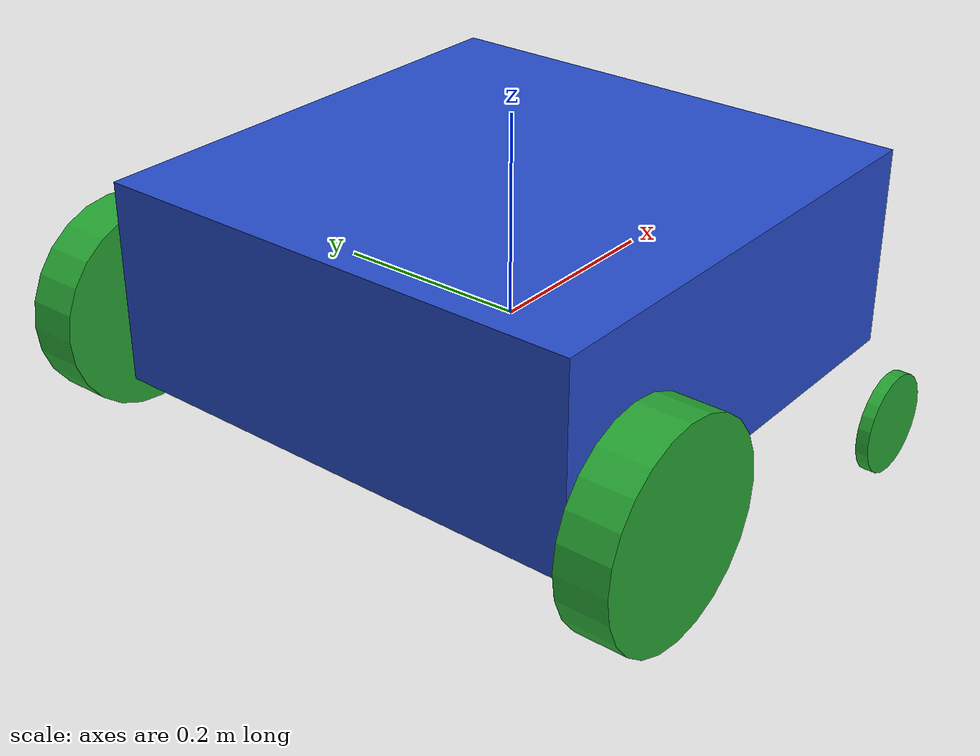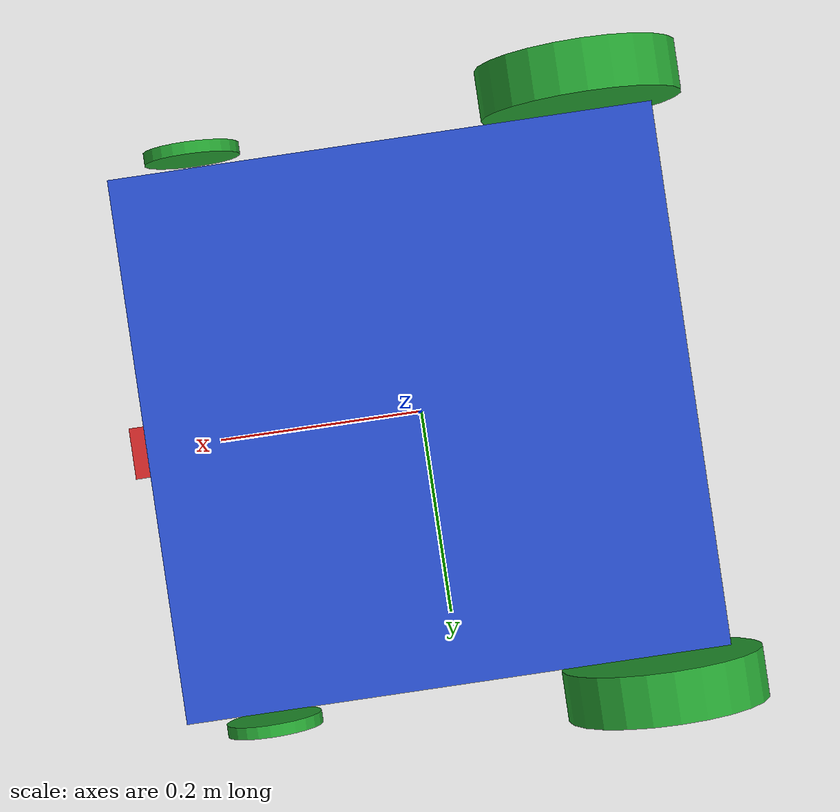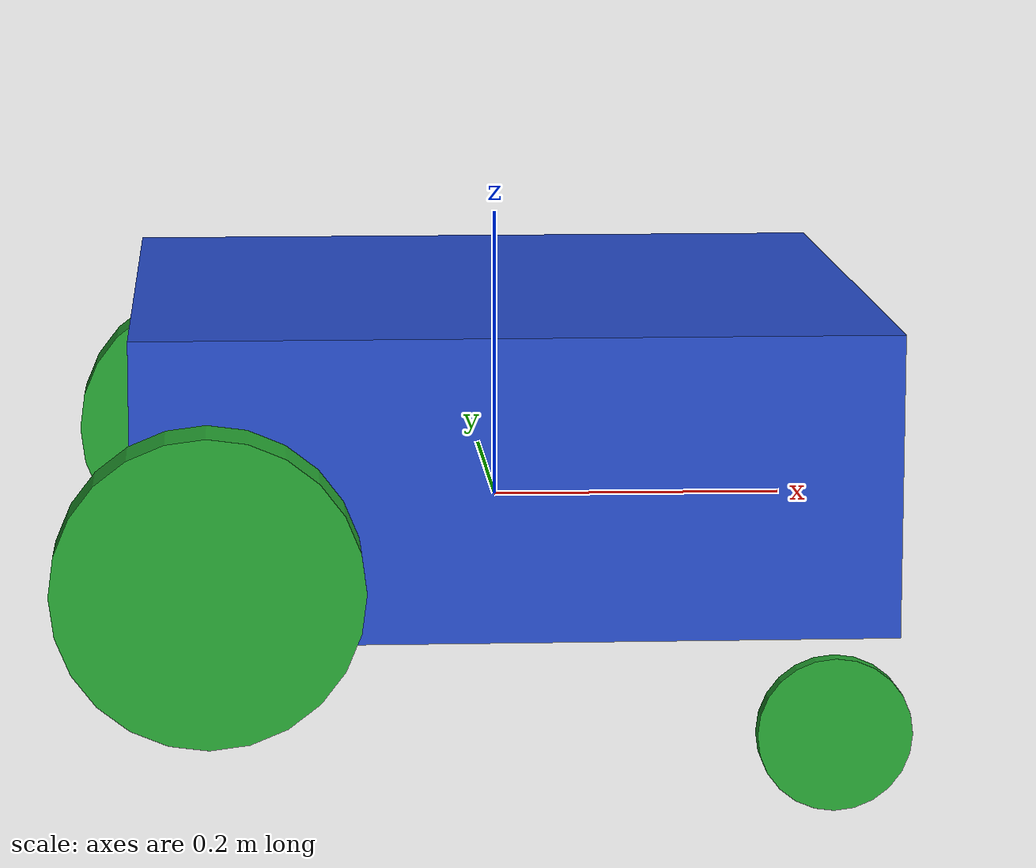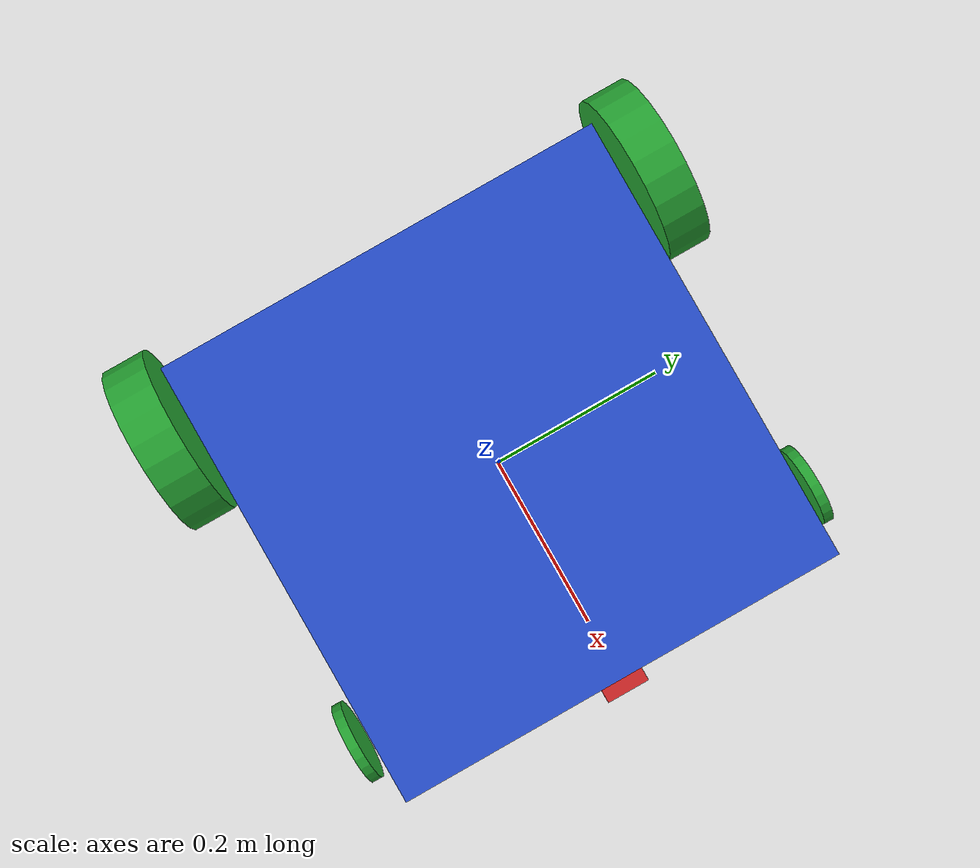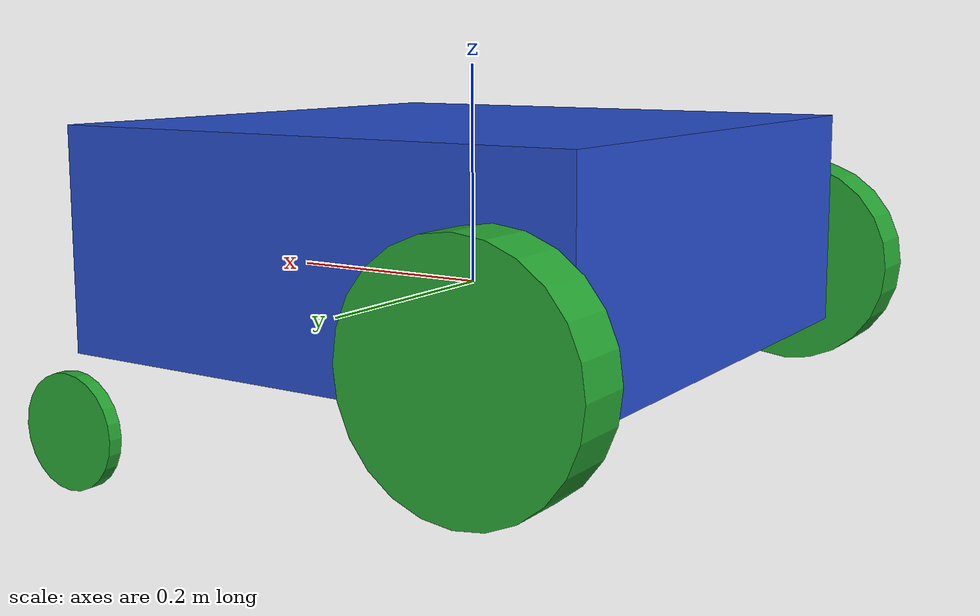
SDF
<sdf version='1.7'>
  <model name='carre_sim'>
    <link name='robot_footprint'>
      <inertial>
        <pose>0.001722 0 0 0 -0 0</pose>
        <mass>15.1</mass>
        <inertia>
          <ixx>0.147118</ixx>
          <ixy>0</ixy>
          <ixz>0</ixz>
          <iyy>0.341667</iyy>
          <iyz>0</iyz>
          <izz>0.404551</izz>
        </inertia>
      </inertial>
      <collision name='robot_footprint_fixed_joint_lump__collision_collision'>
        <pose>0 0 0.05 0 -0 0</pose>
        <geometry>
          <box>
            <size>0.5 0.5 0.2</size>
          </box>
        </geometry>
      </collision>
      <collision name='robot_footprint_fixed_joint_lump__camera_collision_1'>
        <pose>0.26 0 0 0 -0 0</pose>
        <geometry>
          <box>
            <size>0.05 0.05 0.05</size>
          </box>
        </geometry>
        <surface>
          <contact>
            <ode/>
          </contact>
          <friction>
            <ode/>
          </friction>
        </surface>
      </collision>
      <visual name='robot_footprint_fixed_joint_lump__chassis_visual_visual'>
        <pose>0 0 0.05 0 -0 0</pose>
        <geometry>
          <box>
            <size>0.5 0.5 0.2</size>
          </box>
        </geometry>
        <material>
          <script>
            <name>Gazebo/Blue</name>
            <uri>file://media/materials/scripts/gazebo.material</uri>
          </script>
        </material>
      </visual>
      <visual name='robot_footprint_fixed_joint_lump__camera_visual_1'>
        <pose>0.26 0 0 0 -0 0</pose>
        <geometry>
          <box>
            <size>0.05 0.05 0.05</size>
          </box>
        </geometry>
        <material>
          <script>
            <name>Gazebo/Red</name>
            <uri>file://media/materials/scripts/gazebo.material</uri>
          </script>
        </material>
      </visual>
      <sensor name='camera1' type='camera'>
        <update_rate>30</update_rate>
        <camera name='head'>
          <horizontal_fov>2.0944</horizontal_fov>
          <image>
            <width>1920</width>
            <height>1080</height>
            <format>R8G8B8</format>
          </image>
          <clip>
            <near>0.02</near>
            <far>300</far>
          </clip>
        </camera>
        <plugin name='camera_controller' filename='libgazebo_ros_camera.so'>
          <robotNamespace>/carre_sim</robotNamespace>
          <alwaysOn>1</alwaysOn>
          <updateRate>0.0</updateRate>
          <cameraName>camera</cameraName>
          <imageTopicName>rgb/image_raw</imageTopicName>
          <cameraInfoTopicName>rgb/camera_info</cameraInfoTopicName>
          <frameName>camera</frameName>
          <hackBaseline>0.07</hackBaseline>
          <distortionK1>0.0</distortionK1>
          <distortionK2>0.0</distortionK2>
          <distortionK3>0.0</distortionK3>
          <distortionT1>0.0</distortionT1>
          <distortionT2>0.0</distortionT2>
        </plugin>
        <pose>0.26 0 0 0 -0 0</pose>
      </sensor>
    </link>
    <joint name='left_wheel_hinge_back' type='revolute'>
      <pose relative_to='robot_footprint'>-0.2 0.3 0 0 -0 0</pose>
      <parent>robot_footprint</parent>
      <child>left_wheel_back</child>
      <axis>
        <xyz>0 1 0</xyz>
        <limit>
          <effort>10000</effort>
          <velocity>1000</velocity>
          <lower>-1e+16</lower>
          <upper>1e+16</upper>
        </limit>
        <dynamics>
          <damping>1</damping>
          <friction>1</friction>
          <spring_reference>0</spring_reference>
          <spring_stiffness>0</spring_stiffness>
        </dynamics>
      </axis>
    </joint>
    <link name='left_wheel_back'>
      <pose relative_to='left_wheel_hinge_back'>0 0 0 0 -0 0</pose>
      <inertial>
        <pose>0 0 0 0 1.5707 1.5707</pose>
        <mass>5</mass>
        <inertia>
          <ixx>0.1</ixx>
          <ixy>0</ixy>
          <ixz>0</ixz>
          <iyy>0.1</iyy>
          <iyz>0</iyz>
          <izz>0.1</izz>
        </inertia>
      </inertial>
      <collision name='left_wheel_back_collision'>
        <pose>0 0 0 -1.5707 1.5708 0</pose>
        <geometry>
          <cylinder>
            <length>0.05</length>
            <radius>0.1</radius>
          </cylinder>
        </geometry>
        <surface>
          <contact>
            <ode>
              <kp>1e+06</kp>
              <kd>100</kd>
              <max_vel>1</max_vel>
              <min_depth>0</min_depth>
            </ode>
          </contact>
          <friction>
            <ode>
              <mu>1</mu>
              <mu2>1</mu2>
            </ode>
          </friction>
        </surface>
      </collision>
      <visual name='left_wheel_back_visual'>
        <pose>0 0 0 -1.5707 1.5708 0</pose>
        <geometry>
          <cylinder>
            <length>0.05</length>
            <radius>0.1</radius>
          </cylinder>
        </geometry>
        <material>
          <script>
            <name>Gazebo/Green</name>
            <uri>file://media/materials/scripts/gazebo.material</uri>
          </script>
        </material>
      </visual>
    </link>
    <joint name='left_wheel_hinge_front' type='revolute'>
      <pose relative_to='robot_footprint'>0.2 0.3 -0.1 0 -0 0</pose>
      <parent>robot_footprint</parent>
      <child>left_wheel_front</child>
      <axis>
        <xyz>0 1 0</xyz>
        <limit>
          <effort>10000</effort>
          <velocity>1000</velocity>
          <lower>-1e+16</lower>
          <upper>1e+16</upper>
        </limit>
        <dynamics>
          <damping>1</damping>
          <friction>1</friction>
          <spring_reference>0</spring_reference>
          <spring_stiffness>0</spring_stiffness>
        </dynamics>
      </axis>
    </joint>
    <link name='left_wheel_front'>
      <pose relative_to='left_wheel_hinge_front'>0 0 0 0 -0 0</pose>
      <inertial>
        <pose>0 0 0 0 1.5707 1.5707</pose>
        <mass>5</mass>
        <inertia>
          <ixx>0.1</ixx>
          <ixy>0</ixy>
          <ixz>0</ixz>
          <iyy>0.1</iyy>
          <iyz>0</iyz>
          <izz>0.1</izz>
        </inertia>
      </inertial>
      <collision name='left_wheel_front_collision'>
        <pose>0 0 0 -1.5707 1.5708 0</pose>
        <geometry>
          <cylinder>
            <length>0.0125</length>
            <radius>0.05</radius>
          </cylinder>
        </geometry>
        <surface>
          <contact>
            <ode>
              <kp>1e+06</kp>
              <kd>100</kd>
              <max_vel>1</max_vel>
              <min_depth>0</min_depth>
            </ode>
          </contact>
          <friction>
            <ode>
              <mu>1</mu>
              <mu2>1</mu2>
            </ode>
          </friction>
        </surface>
      </collision>
      <visual name='left_wheel_front_visual'>
        <pose>0 0 0 -1.5707 1.5708 0</pose>
        <geometry>
          <cylinder>
            <length>0.0125</length>
            <radius>0.05</radius>
          </cylinder>
        </geometry>
        <material>
          <script>
            <name>Gazebo/Green</name>
            <uri>file://media/materials/scripts/gazebo.material</uri>
          </script>
        </material>
      </visual>
    </link>
    <joint name='right_wheel_hinge_back' type='revolute'>
      <pose relative_to='robot_footprint'>-0.2 -0.3 0 0 -0 0</pose>
      <parent>robot_footprint</parent>
      <child>right_wheel_back</child>
      <axis>
        <xyz>0 1 0</xyz>
        <limit>
          <effort>10000</effort>
          <velocity>1000</velocity>
          <lower>-1e+16</lower>
          <upper>1e+16</upper>
        </limit>
        <dynamics>
          <damping>1</damping>
          <friction>1</friction>
          <spring_reference>0</spring_reference>
          <spring_stiffness>0</spring_stiffness>
        </dynamics>
      </axis>
    </joint>
    <link name='right_wheel_back'>
      <pose relative_to='right_wheel_hinge_back'>0 0 0 0 -0 0</pose>
      <inertial>
        <pose>0 0 0 0 1.5707 1.5707</pose>
        <mass>5</mass>
        <inertia>
          <ixx>0.1</ixx>
          <ixy>0</ixy>
          <ixz>0</ixz>
          <iyy>0.1</iyy>
          <iyz>0</iyz>
          <izz>0.1</izz>
        </inertia>
      </inertial>
      <collision name='right_wheel_back_collision'>
        <pose>0 0 0 -1.5707 1.5708 0</pose>
        <geometry>
          <cylinder>
            <length>0.05</length>
            <radius>0.1</radius>
          </cylinder>
        </geometry>
        <surface>
          <contact>
            <ode>
              <kp>1e+06</kp>
              <kd>100</kd>
              <max_vel>1</max_vel>
              <min_depth>0</min_depth>
            </ode>
          </contact>
          <friction>
            <ode>
              <mu>1</mu>
              <mu2>1</mu2>
            </ode>
          </friction>
        </surface>
      </collision>
      <visual name='right_wheel_back_visual'>
        <pose>0 0 0 -1.5707 1.5708 0</pose>
        <geometry>
          <cylinder>
            <length>0.05</length>
            <radius>0.1</radius>
          </cylinder>
        </geometry>
        <material>
          <script>
            <name>Gazebo/Green</name>
            <uri>file://media/materials/scripts/gazebo.material</uri>
          </script>
        </material>
      </visual>
    </link>
    <joint name='right_wheel_hinge_front' type='revolute'>
      <pose relative_to='robot_footprint'>0.2 -0.3 -0.1 0 -0 0</pose>
      <parent>robot_footprint</parent>
      <child>right_wheel_front</child>
      <axis>
        <xyz>0 1 0</xyz>
        <limit>
          <effort>10000</effort>
          <velocity>1000</velocity>
          <lower>-1e+16</lower>
          <upper>1e+16</upper>
        </limit>
        <dynamics>
          <damping>1</damping>
          <friction>1</friction>
          <spring_reference>0</spring_reference>
          <spring_stiffness>0</spring_stiffness>
        </dynamics>
      </axis>
    </joint>
    <link name='right_wheel_front'>
      <pose relative_to='right_wheel_hinge_front'>0 0 0 0 -0 0</pose>
      <inertial>
        <pose>0 0 0 0 1.5707 1.5707</pose>
        <mass>5</mass>
        <inertia>
          <ixx>0.1</ixx>
          <ixy>0</ixy>
          <ixz>0</ixz>
          <iyy>0.1</iyy>
          <iyz>0</iyz>
          <izz>0.1</izz>
        </inertia>
      </inertial>
      <collision name='right_wheel_front_collision'>
        <pose>0 0 0 -1.5707 1.5708 0</pose>
        <geometry>
          <cylinder>
            <length>0.0125</length>
            <radius>0.05</radius>
          </cylinder>
        </geometry>
        <surface>
          <contact>
            <ode>
              <kp>1e+06</kp>
              <kd>100</kd>
              <max_vel>1</max_vel>
              <min_depth>0</min_depth>
            </ode>
          </contact>
          <friction>
            <ode>
              <mu>1</mu>
              <mu2>1</mu2>
            </ode>
          </friction>
        </surface>
      </collision>
      <visual name='right_wheel_front_visual'>
        <pose>0 0 0 -1.5707 1.5708 0</pose>
        <geometry>
          <cylinder>
            <length>0.0125</length>
            <radius>0.05</radius>
          </cylinder>
        </geometry>
        <material>
          <script>
            <name>Gazebo/Green</name>
            <uri>file://media/materials/scripts/gazebo.material</uri>
          </script>
        </material>
      </visual>
    </link>
    <static>0</static>
    <plugin name='skid_steer_drive_controller' filename='libgazebo_ros_skid_steer_drive.so'>
      <updateRate>10.0</updateRate>
      <robotNamespace>/carre_sim</robotNamespace>
      <leftFrontJoint>left_wheel_hinge_front</leftFrontJoint>
      <rightFrontJoint>right_wheel_hinge_front</rightFrontJoint>
      <leftRearJoint>left_wheel_hinge_back</leftRearJoint>
      <rightRearJoint>right_wheel_hinge_back</rightRearJoint>
      <wheelSeparation>0.4</wheelSeparation>
      <wheelDiameter>0.2</wheelDiameter>
      <robotBaseFrame>robot_footprint</robotBaseFrame>
      <torque>10</torque>
      <topicName>cmd_vel</topicName>
      <odometryTopic>odom</odometryTopic>
      <odometryFrame>odom</odometryFrame>
      <commandTopic>cmd_vel</commandTopic>
      <topic_name_twist>cmd_vel</topic_name_twist>
      <topic_name_odometry>odom</topic_name_odometry>
      <topic_name_joint>joint</topic_name_joint>
      <broadcastTF>1</broadcastTF>
      <covariance_x>0.0001</covariance_x>
      <covariance_y>0.0001</covariance_y>
      <covariance_yaw>0.01</covariance_yaw>
    </plugin>
  </model>
</sdf>
